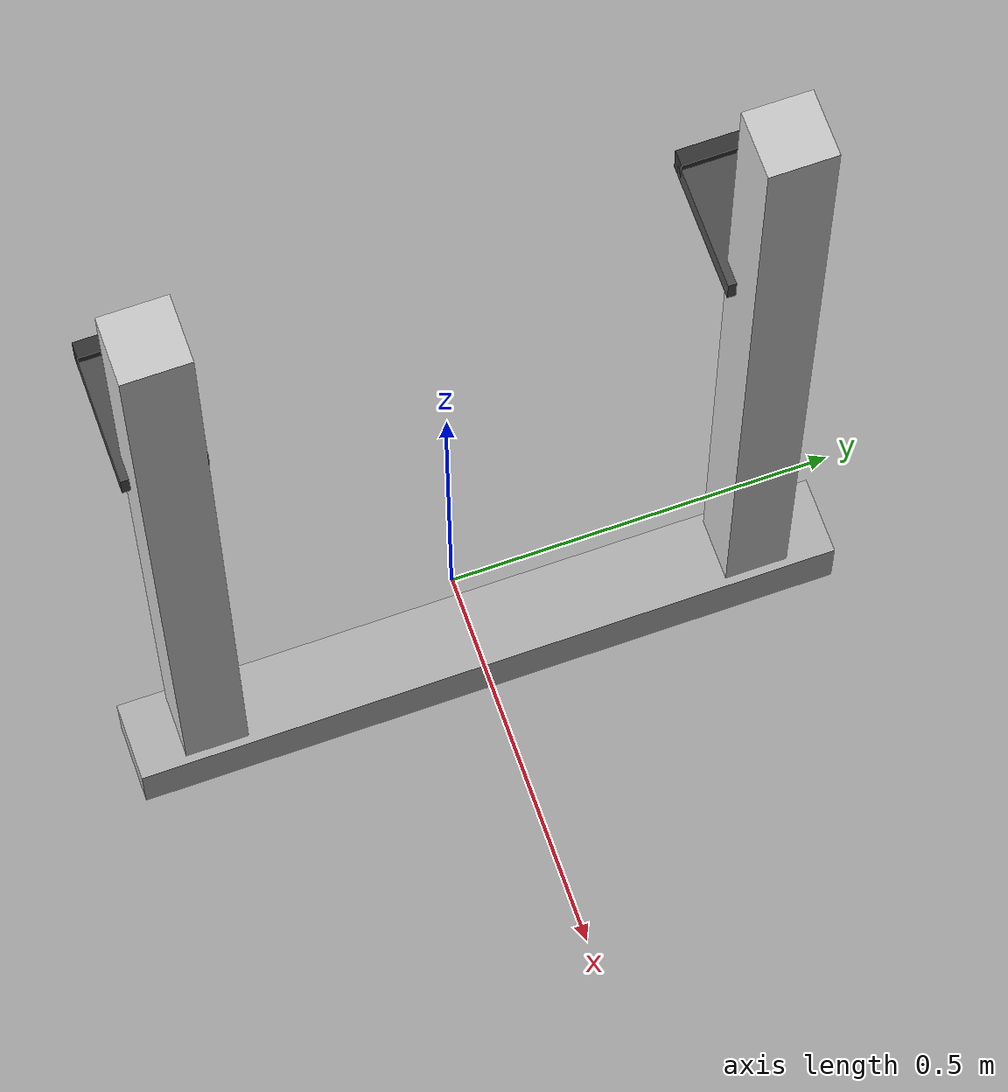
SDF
<?xml version="1.0" ?>
<sdf version="1.7">
  <model name="bench_rack">
    <static>false</static>

    <link name="rack">
      <!-- Left upright -->
      <visual name="upright_L_vis">
        <pose>0.10  0.35 0.60 0 0 0</pose>
        <geometry><box><size>0.08 0.08 1.20</size></box></geometry>
        <material><diffuse>0.8 0.8 0.8 1</diffuse></material>
      </visual>
      <collision name="upright_L_col">
        <pose>0.10  0.35 0.60 0 0 0</pose>
        <geometry><box><size>0.08 0.08 1.20</size></box></geometry>
      </collision>

      <!-- Right upright -->
      <visual name="upright_R_vis">
        <pose>0.10 -0.35 0.60 0 0 0</pose>
        <geometry><box><size>0.08 0.08 1.20</size></box></geometry>
        <material><diffuse>0.8 0.8 0.8 1</diffuse></material>
      </visual>
      <collision name="upright_R_col">
        <pose>0.10 -0.35 0.60 0 0 0</pose>
        <geometry><box><size>0.08 0.08 1.20</size></box></geometry>
      </collision>

      <!-- Base -->
      <visual name="base_cross_vis">
        <pose>0.10 0 0.04 0 0 0</pose>
        <geometry><box><size>0.10 0.90 0.08</size></box></geometry>
        <material><diffuse>0.7 0.7 0.7 1</diffuse></material>
      </visual>
      <collision name="base_cross_col">
        <pose>0.10 0 0.04 0 0 0</pose>
        <geometry><box><size>0.10 0.90 0.08</size></box></geometry>
      </collision>

      <!-- J-hooks (touching uprights, on lifter side, 10 in lower) -->
      <visual name="hook_L_vis">
        <pose>0.01  0.35 0.826 0 0 3.14159265359</pose>
        <geometry><box><size>0.16 0.10 0.03</size></box></geometry>
        <material><diffuse>0.3 0.3 0.3 1</diffuse></material>
      </visual>
      <collision name="hook_L_col">
        <pose>0.01  0.35 0.826 0 0 3.14159265359</pose>
        <geometry><box><size>0.16 0.10 0.03</size></box></geometry>
      </collision>
      <visual name="hook_L_lip_vis">
        <pose>-0.07  0.35 0.832 0 0 3.14159265359</pose>
        <geometry><box><size>0.02 0.10 0.04</size></box></geometry>
        <material><diffuse>0.2 0.2 0.2 1</diffuse></material>
      </visual>
      <collision name="hook_L_lip_col">
        <pose>-0.07  0.35 0.832 0 0 3.14159265359</pose>
        <geometry><box><size>0.02 0.10 0.04</size></box></geometry>
      </collision>

      <visual name="hook_R_vis">
        <pose>0.01 -0.35 0.826 0 0 3.14159265359</pose>
        <geometry><box><size>0.16 0.10 0.03</size></box></geometry>
        <material><diffuse>0.3 0.3 0.3 1</diffuse></material>
      </visual>
      <collision name="hook_R_col">
        <pose>0.01 -0.35 0.826 0 0 3.14159265359</pose>
        <geometry><box><size>0.16 0.10 0.03</size></box></geometry>
      </collision>
      <visual name="hook_R_lip_vis">
        <pose>-0.07 -0.35 0.832 0 0 3.14159265359</pose>
        <geometry><box><size>0.02 0.10 0.04</size></box></geometry>
        <material><diffuse>0.2 0.2 0.2 1</diffuse></material>
      </visual>
      <collision name="hook_R_lip_col">
        <pose>-0.07 -0.35 0.832 0 0 3.14159265359</pose>
        <geometry><box><size>0.02 0.10 0.04</size></box></geometry>
      </collision>

    </link>
  </model>
</sdf>
